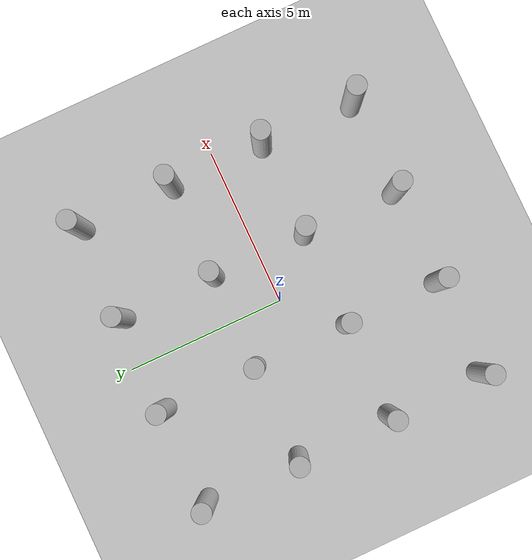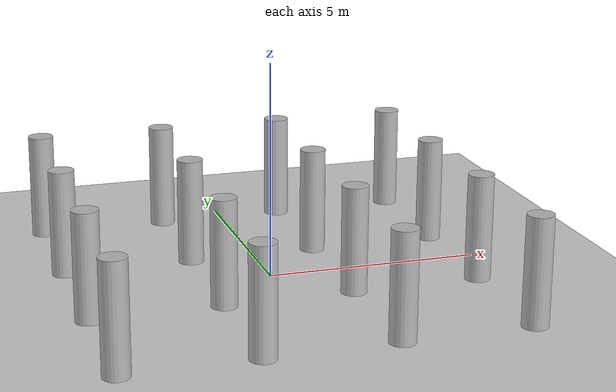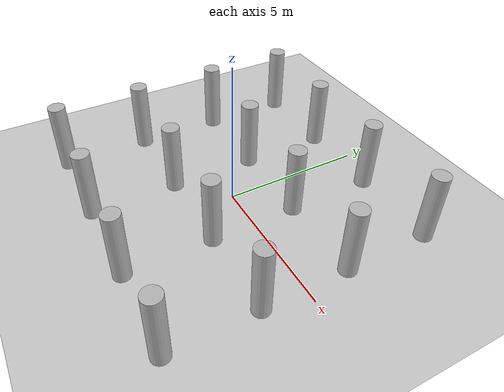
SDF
<?xml version="1.0" encoding="UTF-8"?>
<sdf version="1.9">
  <world name="obstacle_suite_pillar_forest">
    <physics type="ode">
      <max_step_size>0.004</max_step_size>
      <real_time_factor>1.0</real_time_factor>
      <real_time_update_rate>250</real_time_update_rate>
    </physics>
    <gravity>0 0 -9.8</gravity>
    <magnetic_field>6e-06 2.3e-05 -4.2e-05</magnetic_field>
    <atmosphere type="adiabatic"/>
    <scene>
      <grid>false</grid>
      <ambient>1.0 1.0 1.0 1</ambient>
      <background>0.7 0.7 0.7 1</background>
      <shadows>true</shadows>
    </scene>
    <model name="ground_plane">
      <static>true</static>
      <link name="link">
        <collision name="collision">
          <geometry><plane><normal>0 0 1</normal><size>1 1</size></plane></geometry>
        </collision>
        <visual name="visual">
          <geometry><plane><normal>0 0 1</normal><size>500 500</size></plane></geometry>
          <material>
            <ambient>0.8 0.8 0.8 1</ambient>
            <diffuse>0.8 0.8 0.8 1</diffuse>
            <specular>0.8 0.8 0.8 1</specular>
          </material>
        </visual>
      </link>
    </model>
    <model name="aeris_cylinder_0">
      <static>true</static>
      <pose>-4.5 -4.5 1.25 0 0 0</pose>
      <link name="link">
        <collision name="collision">
          <geometry><cylinder><radius>0.3</radius><length>2.5</length></cylinder></geometry>
        </collision>
        <visual name="visual">
          <geometry><cylinder><radius>0.3</radius><length>2.5</length></cylinder></geometry>
        </visual>
      </link>
    </model>
    <model name="aeris_cylinder_1">
      <static>true</static>
      <pose>-4.5 -1.5 1.25 0 0 0</pose>
      <link name="link">
        <collision name="collision">
          <geometry><cylinder><radius>0.3</radius><length>2.5</length></cylinder></geometry>
        </collision>
        <visual name="visual">
          <geometry><cylinder><radius>0.3</radius><length>2.5</length></cylinder></geometry>
        </visual>
      </link>
    </model>
    <model name="aeris_cylinder_2">
      <static>true</static>
      <pose>-4.5 1.5 1.25 0 0 0</pose>
      <link name="link">
        <collision name="collision">
          <geometry><cylinder><radius>0.3</radius><length>2.5</length></cylinder></geometry>
        </collision>
        <visual name="visual">
          <geometry><cylinder><radius>0.3</radius><length>2.5</length></cylinder></geometry>
        </visual>
      </link>
    </model>
    <model name="aeris_cylinder_3">
      <static>true</static>
      <pose>-4.5 4.5 1.25 0 0 0</pose>
      <link name="link">
        <collision name="collision">
          <geometry><cylinder><radius>0.3</radius><length>2.5</length></cylinder></geometry>
        </collision>
        <visual name="visual">
          <geometry><cylinder><radius>0.3</radius><length>2.5</length></cylinder></geometry>
        </visual>
      </link>
    </model>
    <model name="aeris_cylinder_4">
      <static>true</static>
      <pose>-1.5 -4.5 1.25 0 0 0</pose>
      <link name="link">
        <collision name="collision">
          <geometry><cylinder><radius>0.3</radius><length>2.5</length></cylinder></geometry>
        </collision>
        <visual name="visual">
          <geometry><cylinder><radius>0.3</radius><length>2.5</length></cylinder></geometry>
        </visual>
      </link>
    </model>
    <model name="aeris_cylinder_5">
      <static>true</static>
      <pose>-1.5 -1.5 1.25 0 0 0</pose>
      <link name="link">
        <collision name="collision">
          <geometry><cylinder><radius>0.3</radius><length>2.5</length></cylinder></geometry>
        </collision>
        <visual name="visual">
          <geometry><cylinder><radius>0.3</radius><length>2.5</length></cylinder></geometry>
        </visual>
      </link>
    </model>
    <model name="aeris_cylinder_6">
      <static>true</static>
      <pose>-1.5 1.5 1.25 0 0 0</pose>
      <link name="link">
        <collision name="collision">
          <geometry><cylinder><radius>0.3</radius><length>2.5</length></cylinder></geometry>
        </collision>
        <visual name="visual">
          <geometry><cylinder><radius>0.3</radius><length>2.5</length></cylinder></geometry>
        </visual>
      </link>
    </model>
    <model name="aeris_cylinder_7">
      <static>true</static>
      <pose>-1.5 4.5 1.25 0 0 0</pose>
      <link name="link">
        <collision name="collision">
          <geometry><cylinder><radius>0.3</radius><length>2.5</length></cylinder></geometry>
        </collision>
        <visual name="visual">
          <geometry><cylinder><radius>0.3</radius><length>2.5</length></cylinder></geometry>
        </visual>
      </link>
    </model>
    <model name="aeris_cylinder_8">
      <static>true</static>
      <pose>1.5 -4.5 1.25 0 0 0</pose>
      <link name="link">
        <collision name="collision">
          <geometry><cylinder><radius>0.3</radius><length>2.5</length></cylinder></geometry>
        </collision>
        <visual name="visual">
          <geometry><cylinder><radius>0.3</radius><length>2.5</length></cylinder></geometry>
        </visual>
      </link>
    </model>
    <model name="aeris_cylinder_9">
      <static>true</static>
      <pose>1.5 -1.5 1.25 0 0 0</pose>
      <link name="link">
        <collision name="collision">
          <geometry><cylinder><radius>0.3</radius><length>2.5</length></cylinder></geometry>
        </collision>
        <visual name="visual">
          <geometry><cylinder><radius>0.3</radius><length>2.5</length></cylinder></geometry>
        </visual>
      </link>
    </model>
    <model name="aeris_cylinder_10">
      <static>true</static>
      <pose>1.5 1.5 1.25 0 0 0</pose>
      <link name="link">
        <collision name="collision">
          <geometry><cylinder><radius>0.3</radius><length>2.5</length></cylinder></geometry>
        </collision>
        <visual name="visual">
          <geometry><cylinder><radius>0.3</radius><length>2.5</length></cylinder></geometry>
        </visual>
      </link>
    </model>
    <model name="aeris_cylinder_11">
      <static>true</static>
      <pose>1.5 4.5 1.25 0 0 0</pose>
      <link name="link">
        <collision name="collision">
          <geometry><cylinder><radius>0.3</radius><length>2.5</length></cylinder></geometry>
        </collision>
        <visual name="visual">
          <geometry><cylinder><radius>0.3</radius><length>2.5</length></cylinder></geometry>
        </visual>
      </link>
    </model>
    <model name="aeris_cylinder_12">
      <static>true</static>
      <pose>4.5 -4.5 1.25 0 0 0</pose>
      <link name="link">
        <collision name="collision">
          <geometry><cylinder><radius>0.3</radius><length>2.5</length></cylinder></geometry>
        </collision>
        <visual name="visual">
          <geometry><cylinder><radius>0.3</radius><length>2.5</length></cylinder></geometry>
        </visual>
      </link>
    </model>
    <model name="aeris_cylinder_13">
      <static>true</static>
      <pose>4.5 -1.5 1.25 0 0 0</pose>
      <link name="link">
        <collision name="collision">
          <geometry><cylinder><radius>0.3</radius><length>2.5</length></cylinder></geometry>
        </collision>
        <visual name="visual">
          <geometry><cylinder><radius>0.3</radius><length>2.5</length></cylinder></geometry>
        </visual>
      </link>
    </model>
    <model name="aeris_cylinder_14">
      <static>true</static>
      <pose>4.5 1.5 1.25 0 0 0</pose>
      <link name="link">
        <collision name="collision">
          <geometry><cylinder><radius>0.3</radius><length>2.5</length></cylinder></geometry>
        </collision>
        <visual name="visual">
          <geometry><cylinder><radius>0.3</radius><length>2.5</length></cylinder></geometry>
        </visual>
      </link>
    </model>
    <model name="aeris_cylinder_15">
      <static>true</static>
      <pose>4.5 4.5 1.25 0 0 0</pose>
      <link name="link">
        <collision name="collision">
          <geometry><cylinder><radius>0.3</radius><length>2.5</length></cylinder></geometry>
        </collision>
        <visual name="visual">
          <geometry><cylinder><radius>0.3</radius><length>2.5</length></cylinder></geometry>
        </visual>
      </link>
    </model>
    <light name="sunUTC" type="directional">
      <pose>0 0 500 0 -0 0</pose>
      <cast_shadows>true</cast_shadows>
      <intensity>1</intensity>
      <direction>0.001 0.625 -0.78</direction>
      <diffuse>0.904 0.904 0.904 1</diffuse>
      <specular>0.271 0.271 0.271 1</specular>
      <attenuation>
        <range>2000</range>
        <linear>0</linear>
        <constant>1</constant>
        <quadratic>0</quadratic>
      </attenuation>
      <spot><inner_angle>0</inner_angle><outer_angle>0</outer_angle><falloff>0</falloff></spot>
    </light>
    <spherical_coordinates>
      <surface_model>EARTH_WGS84</surface_model>
      <world_frame_orientation>ENU</world_frame_orientation>
      <latitude_deg>47.397971057728974</latitude_deg>
      <longitude_deg>8.546163739800146</longitude_deg>
      <elevation>0</elevation>
    </spherical_coordinates>
  </world>
</sdf>
